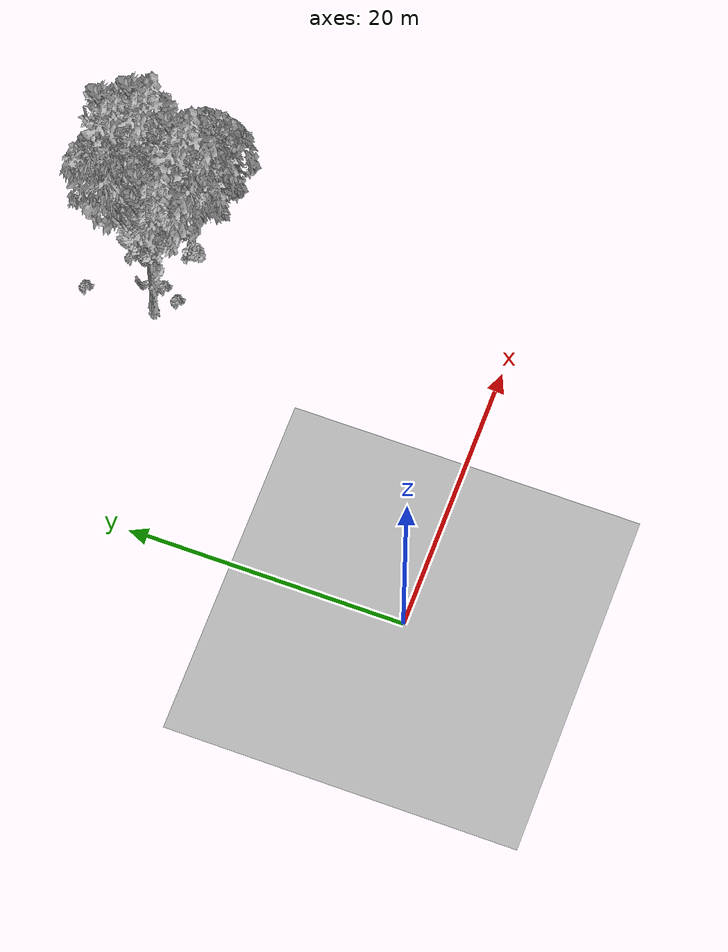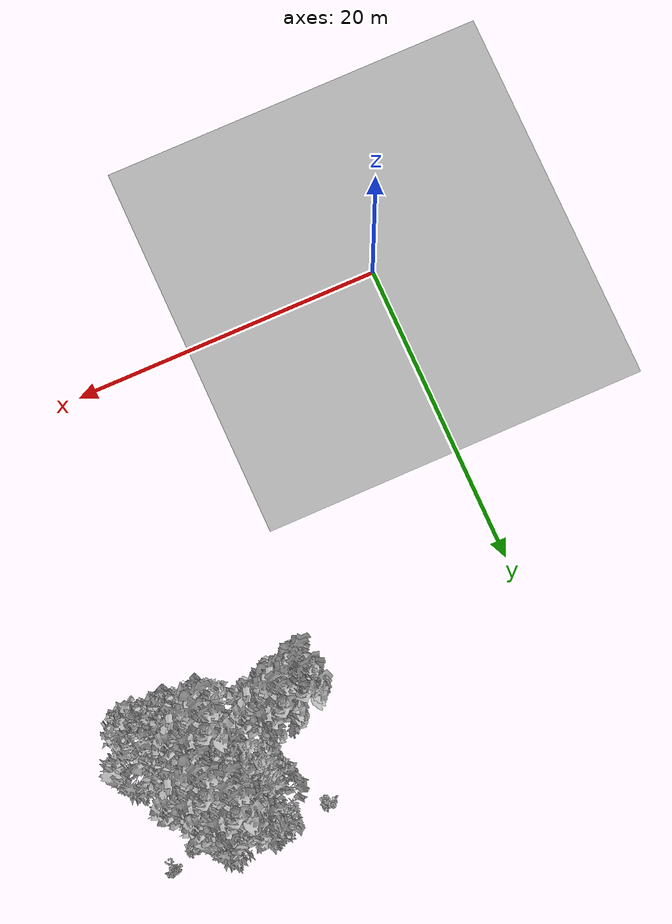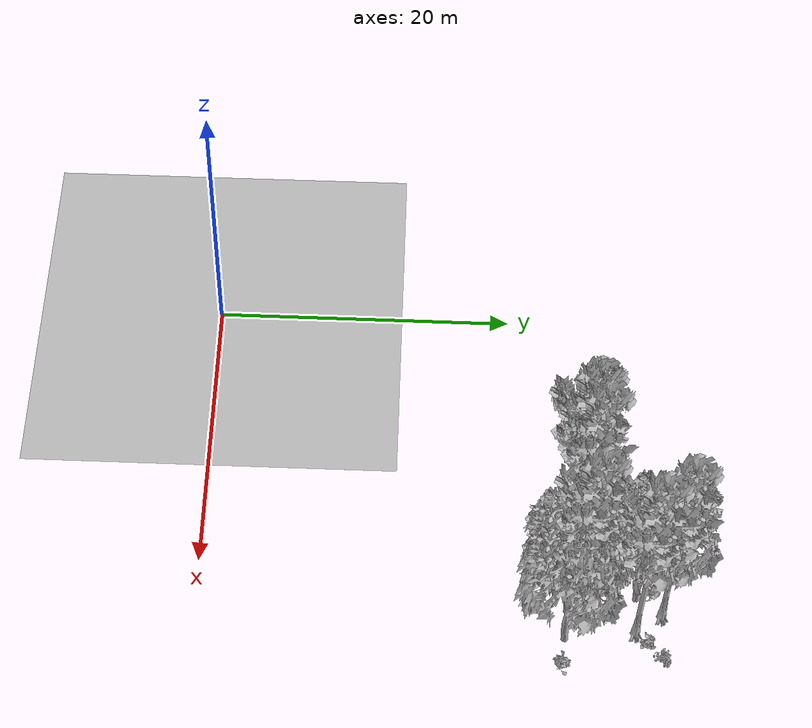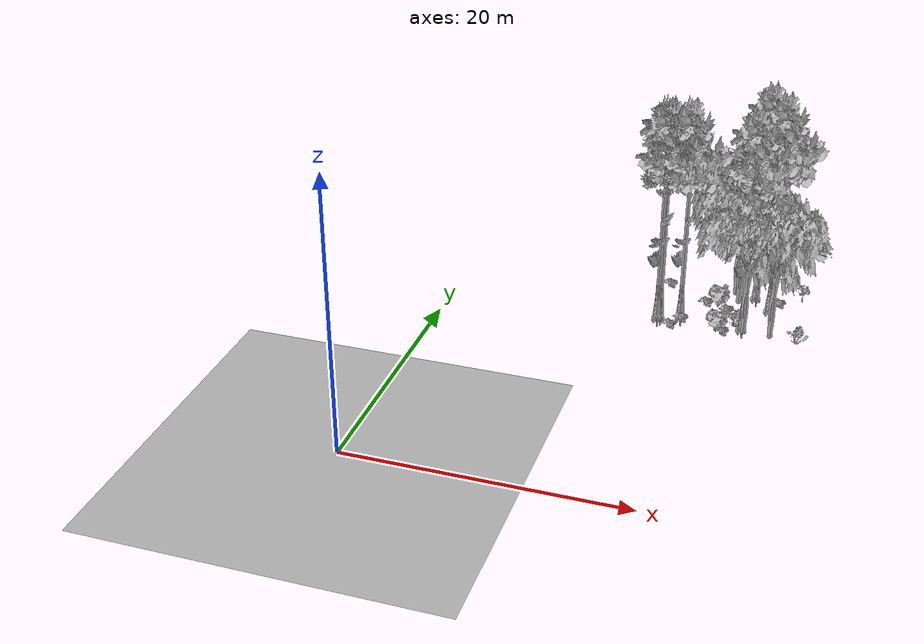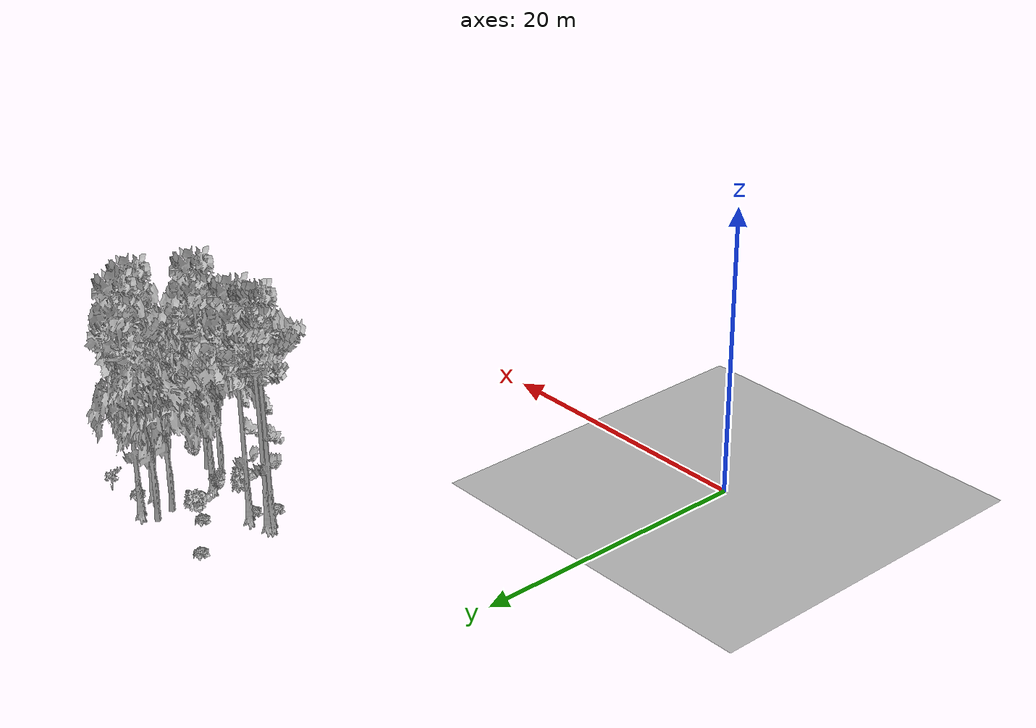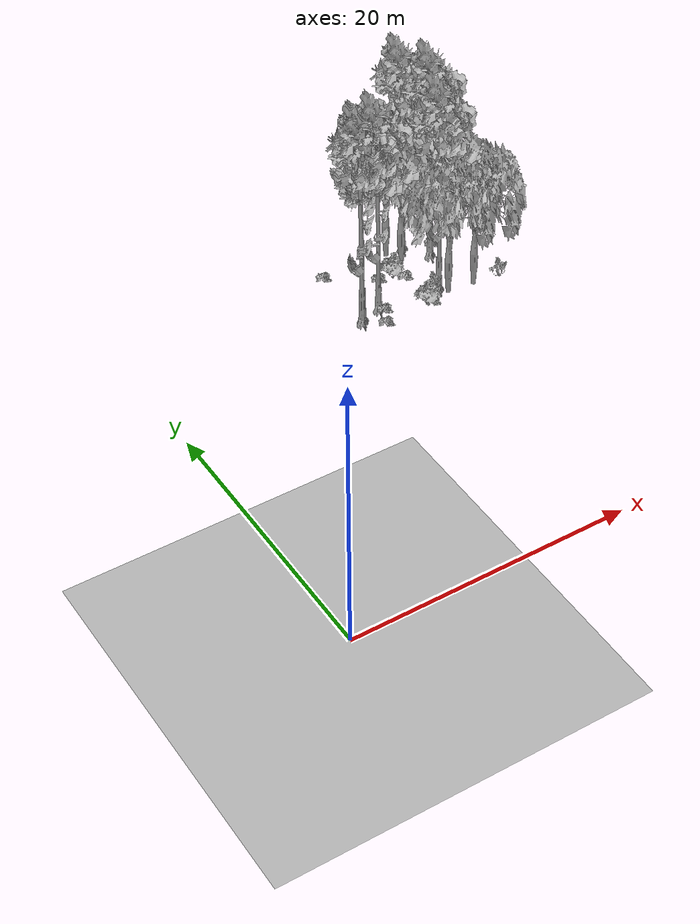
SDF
<sdf version="1.7">
 <world name="default">
  <model name="ground_plane">
   <static>1</static>
   <link name="link">
    <collision name="collision">
     <pose>-50 0 0 0 -0 0</pose>
     <geometry><plane><normal>0 0 1</normal><size>80 80</size></plane></geometry>
     <surface><contact><ode><min_depth>0.01</min_depth><max_vel>0</max_vel></ode></contact></surface>
    </collision>
    <visual name="grass">
     <cast_shadows>0</cast_shadows>
     <geometry>
      <mesh>
       <scale>0.46714285714285714 0.46714285714285714 0.1</scale>
       <uri>file://grass_plane/meshes/grass_plane.dae</uri>
      </mesh>
     </geometry>
    </visual>
   </link>
  </model>
  <model name="Tree 4">
   <static>1</static>
   <pose>22.770856354891208 23.732544014960027 0 1.57079 -0 0</pose>
   <link name="link">
    <collision name="collision">
     <geometry><mesh><scale>3.5 5 3.5</scale><uri>model://tree_2/meshes/tree_2.obj</uri></mesh></geometry>
    </collision>
    <visual name="visual">
     <geometry><mesh><scale>3.5 5 3.5</scale><uri>model://tree_2/meshes/tree_2.obj</uri></mesh></geometry>
    </visual>
   </link>
  </model>
  <model name="Tree 293">
   <static>1</static>
   <pose>16.142587904334476 24.362912012734682 0 1.57079 -0 0</pose>
   <link name="link">
    <collision name="collision">
     <geometry><mesh><scale>3.5 5 3.5</scale><uri>model://tree_9/meshes/tree_9.obj</uri></mesh></geometry>
    </collision>
    <visual name="visual">
     <geometry><mesh><scale>3.5 5 3.5</scale><uri>model://tree_9/meshes/tree_9.obj</uri></mesh></geometry>
    </visual>
   </link>
  </model>
  <model name="Tree 364">
   <static>1</static>
   <pose>16.319480101482988 24.58904205366541 0 1.57079 -0 0</pose>
   <link name="link">
    <collision name="collision">
     <geometry><mesh><scale>3.5 5 3.5</scale><uri>model://tree_9/meshes/tree_9.obj</uri></mesh></geometry>
    </collision>
    <visual name="visual">
     <geometry><mesh><scale>3.5 5 3.5</scale><uri>model://tree_9/meshes/tree_9.obj</uri></mesh></geometry>
    </visual>
   </link>
  </model>
  <model name="Tree 382">
   <static>1</static>
   <pose>24.7841982033328 23.548231082994988 0 1.57079 -0 0</pose>
   <link name="link">
    <collision name="collision">
     <geometry><mesh><scale>3.5 5 3.5</scale><uri>model://tree_2/meshes/tree_2.obj</uri></mesh></geometry>
    </collision>
    <visual name="visual">
     <geometry><mesh><scale>3.5 5 3.5</scale><uri>model://tree_2/meshes/tree_2.obj</uri></mesh></geometry>
    </visual>
   </link>
  </model>
  <model name="Tree 385">
   <static>1</static>
   <pose>17.843217571370275 24.93746434558311 0 1.57079 -0 0</pose>
   <link name="link">
    <collision name="collision">
     <geometry><mesh><scale>3.5 5 3.5</scale><uri>model://tree_9/meshes/tree_9.obj</uri></mesh></geometry>
    </collision>
    <visual name="visual">
     <geometry><mesh><scale>3.5 5 3.5</scale><uri>model://tree_9/meshes/tree_9.obj</uri></mesh></geometry>
    </visual>
   </link>
  </model>
  <model name="Tree 406">
   <static>1</static>
   <pose>22.943441012393492 29.794226284376066 0 1.57079 -0 0</pose>
   <link name="link">
    <collision name="collision">
     <geometry><mesh><scale>3.5 5 3.5</scale><uri>model://tree_9/meshes/tree_9.obj</uri></mesh></geometry>
    </collision>
    <visual name="visual">
     <geometry><mesh><scale>3.5 5 3.5</scale><uri>model://tree_9/meshes/tree_9.obj</uri></mesh></geometry>
    </visual>
   </link>
  </model>
  <model name="Tree 468">
   <static>1</static>
   <pose>21.723212097632164 28.166046578600657 0 1.57079 -0 0</pose>
   <link name="link">
    <collision name="collision">
     <geometry><mesh><scale>3.5 5 3.5</scale><uri>model://tree_2/meshes/tree_2.obj</uri></mesh></geometry>
    </collision>
    <visual name="visual">
     <geometry><mesh><scale>3.5 5 3.5</scale><uri>model://tree_2/meshes/tree_2.obj</uri></mesh></geometry>
    </visual>
   </link>
  </model>
  <model name="Tree 507">
   <static>1</static>
   <pose>24.212515414134877 28.08664073371942 0 1.57079 -0 0</pose>
   <link name="link">
    <collision name="collision">
     <geometry><mesh><scale>3.5 5 3.5</scale><uri>model://tree_9/meshes/tree_9.obj</uri></mesh></geometry>
    </collision>
    <visual name="visual">
     <geometry><mesh><scale>3.5 5 3.5</scale><uri>model://tree_9/meshes/tree_9.obj</uri></mesh></geometry>
    </visual>
   </link>
  </model>
  <model name="Tree 518">
   <static>1</static>
   <pose>22.612563105513537 24.586484560702687 0 1.57079 -0 0</pose>
   <link name="link">
    <collision name="collision">
     <geometry><mesh><scale>3.5 5 3.5</scale><uri>model://tree_9/meshes/tree_9.obj</uri></mesh></geometry>
    </collision>
    <visual name="visual">
     <geometry><mesh><scale>3.5 5 3.5</scale><uri>model://tree_9/meshes/tree_9.obj</uri></mesh></geometry>
    </visual>
   </link>
  </model>
  <model name="Tree 603">
   <static>1</static>
   <pose>21.29383455512091 29.49318838944751 0 1.57079 -0 0</pose>
   <link name="link">
    <collision name="collision">
     <geometry><mesh><scale>3.5 5 3.5</scale><uri>model://tree_2/meshes/tree_2.obj</uri></mesh></geometry>
    </collision>
    <visual name="visual">
     <geometry><mesh><scale>3.5 5 3.5</scale><uri>model://tree_2/meshes/tree_2.obj</uri></mesh></geometry>
    </visual>
   </link>
  </model>
  <model name="Bush 22">
   <static>1</static>
   <pose>20.385495216857336 27.031270840053722 0 1.57079 -0 0</pose>
   <link name="link">
    <collision name="collision">
     <geometry><mesh><scale>2 2 2</scale><uri>model://bush_1/meshes/bush_1.obj</uri></mesh></geometry>
     <surface><contact><collide_without_contact>false</collide_without_contact></contact></surface>
    </collision>
    <visual name="visual">
     <geometry><mesh><scale>2 2 2</scale><uri>model://bush_1/meshes/bush_1.obj</uri></mesh></geometry>
    </visual>
   </link>
  </model>
  <model name="Bush 58">
   <static>1</static>
   <pose>24.835987428366693 28.845810321766407 0 1.57079 -0 0</pose>
   <link name="link">
    <collision name="collision">
     <geometry><mesh><scale>2 2 2</scale><uri>model://bush_2/meshes/bush_2.obj</uri></mesh></geometry>
     <surface><contact><collide_without_contact>false</collide_without_contact></contact></surface>
    </collision>
    <visual name="visual">
     <geometry><mesh><scale>2 2 2</scale><uri>model://bush_2/meshes/bush_2.obj</uri></mesh></geometry>
    </visual>
   </link>
  </model>
  <model name="Bush 75">
   <static>1</static>
   <pose>17.337979913678232 23.148941405519935 0 1.57079 -0 0</pose>
   <link name="link">
    <collision name="collision">
     <geometry><mesh><scale>2 2 2</scale><uri>model://bush_2/meshes/bush_2.obj</uri></mesh></geometry>
     <surface><contact><collide_without_contact>false</collide_without_contact></contact></surface>
    </collision>
    <visual name="visual">
     <geometry><mesh><scale>2 2 2</scale><uri>model://bush_2/meshes/bush_2.obj</uri></mesh></geometry>
    </visual>
   </link>
  </model>
  <model name="Bush 117">
   <static>1</static>
   <pose>20.861562817083943 23.172011513588714 0 1.57079 -0 0</pose>
   <link name="link">
    <collision name="collision">
     <geometry><mesh><scale>2 2 2</scale><uri>model://bush_1/meshes/bush_1.obj</uri></mesh></geometry>
     <surface><contact><collide_without_contact>false</collide_without_contact></contact></surface>
    </collision>
    <visual name="visual">
     <geometry><mesh><scale>2 2 2</scale><uri>model://bush_1/meshes/bush_1.obj</uri></mesh></geometry>
    </visual>
   </link>
  </model>
  <model name="Bush 131">
   <static>1</static>
   <pose>26.55497944286327 29.809853066767303 0 1.57079 -0 0</pose>
   <link name="link">
    <collision name="collision">
     <geometry><mesh><scale>2 2 2</scale><uri>model://bush_5/meshes/bush_5.obj</uri></mesh></geometry>
     <surface><contact><collide_without_contact>false</collide_without_contact></contact></surface>
    </collision>
    <visual name="visual">
     <geometry><mesh><scale>2 2 2</scale><uri>model://bush_5/meshes/bush_5.obj</uri></mesh></geometry>
    </visual>
   </link>
  </model>
  <model name="Bush 194">
   <static>1</static>
   <pose>22.12899522662478 24.406420980859295 0 1.57079 -0 0</pose>
   <link name="link">
    <collision name="collision">
     <geometry><mesh><scale>2 2 2</scale><uri>model://bush_4/meshes/bush_4.obj</uri></mesh></geometry>
     <surface><contact><collide_without_contact>false</collide_without_contact></contact></surface>
    </collision>
    <visual name="visual">
     <geometry><mesh><scale>2 2 2</scale><uri>model://bush_4/meshes/bush_4.obj</uri></mesh></geometry>
    </visual>
   </link>
  </model>
  <model name="Bush 205">
   <static>1</static>
   <pose>19.419065028158947 27.384716770971608 0 1.57079 -0 0</pose>
   <link name="link">
    <collision name="collision">
     <geometry><mesh><scale>2 2 2</scale><uri>model://bush_2/meshes/bush_2.obj</uri></mesh></geometry>
     <surface><contact><collide_without_contact>false</collide_without_contact></contact></surface>
    </collision>
    <visual name="visual">
     <geometry><mesh><scale>2 2 2</scale><uri>model://bush_2/meshes/bush_2.obj</uri></mesh></geometry>
    </visual>
   </link>
  </model>
  <model name="Bush 214">
   <static>1</static>
   <pose>26.87673198502999 23.26395554584387 0 1.57079 -0 0</pose>
   <link name="link">
    <collision name="collision">
     <geometry><mesh><scale>2 2 2</scale><uri>model://bush_4/meshes/bush_4.obj</uri></mesh></geometry>
     <surface><contact><collide_without_contact>false</collide_without_contact></contact></surface>
    </collision>
    <visual name="visual">
     <geometry><mesh><scale>2 2 2</scale><uri>model://bush_4/meshes/bush_4.obj</uri></mesh></geometry>
    </visual>
   </link>
  </model>
  <model name="Bush 349">
   <static>1</static>
   <pose>21.154482364651777 26.652724223701853 0 1.57079 -0 0</pose>
   <link name="link">
    <collision name="collision">
     <geometry><mesh><scale>2 2 2</scale><uri>model://bush_2/meshes/bush_2.obj</uri></mesh></geometry>
     <surface><contact><collide_without_contact>false</collide_without_contact></contact></surface>
    </collision>
    <visual name="visual">
     <geometry><mesh><scale>2 2 2</scale><uri>model://bush_2/meshes/bush_2.obj</uri></mesh></geometry>
    </visual>
   </link>
  </model>
  <model name="Bush 370">
   <static>1</static>
   <pose>21.297825791285483 23.328066901729073 0 1.57079 -0 0</pose>
   <link name="link">
    <collision name="collision">
     <geometry><mesh><scale>2 2 2</scale><uri>model://bush_2/meshes/bush_2.obj</uri></mesh></geometry>
     <surface><contact><collide_without_contact>false</collide_without_contact></contact></surface>
    </collision>
    <visual name="visual">
     <geometry><mesh><scale>2 2 2</scale><uri>model://bush_2/meshes/bush_2.obj</uri></mesh></geometry>
    </visual>
   </link>
  </model>
  <model name="Bush 402">
   <static>1</static>
   <pose>16.180123065030365 29.569570085483747 0 1.57079 -0 0</pose>
   <link name="link">
    <collision name="collision">
     <geometry><mesh><scale>2 2 2</scale><uri>model://bush_2/meshes/bush_2.obj</uri></mesh></geometry>
     <surface><contact><collide_without_contact>false</collide_without_contact></contact></surface>
    </collision>
    <visual name="visual">
     <geometry><mesh><scale>2 2 2</scale><uri>model://bush_2/meshes/bush_2.obj</uri></mesh></geometry>
    </visual>
   </link>
  </model>
  <model name="Bush 599">
   <static>1</static>
   <pose>18.008984142447815 24.396291395066598 0 1.57079 -0 0</pose>
   <link name="link">
    <collision name="collision">
     <geometry><mesh><scale>2 2 2</scale><uri>model://bush_2/meshes/bush_2.obj</uri></mesh></geometry>
     <surface><contact><collide_without_contact>false</collide_without_contact></contact></surface>
    </collision>
    <visual name="visual">
     <geometry><mesh><scale>2 2 2</scale><uri>model://bush_2/meshes/bush_2.obj</uri></mesh></geometry>
    </visual>
   </link>
  </model>
 </world>
</sdf>
